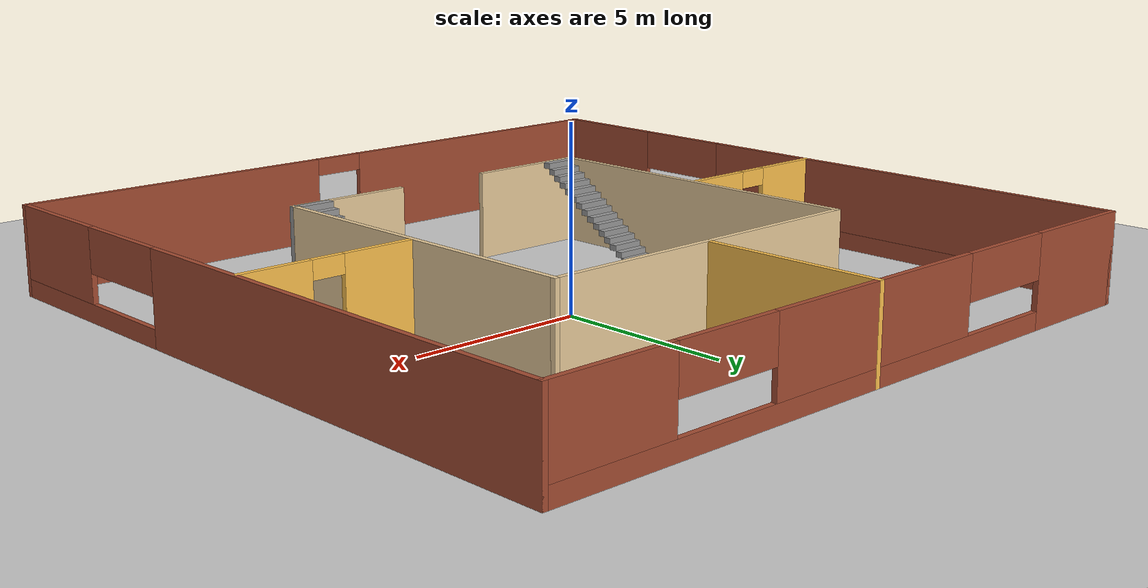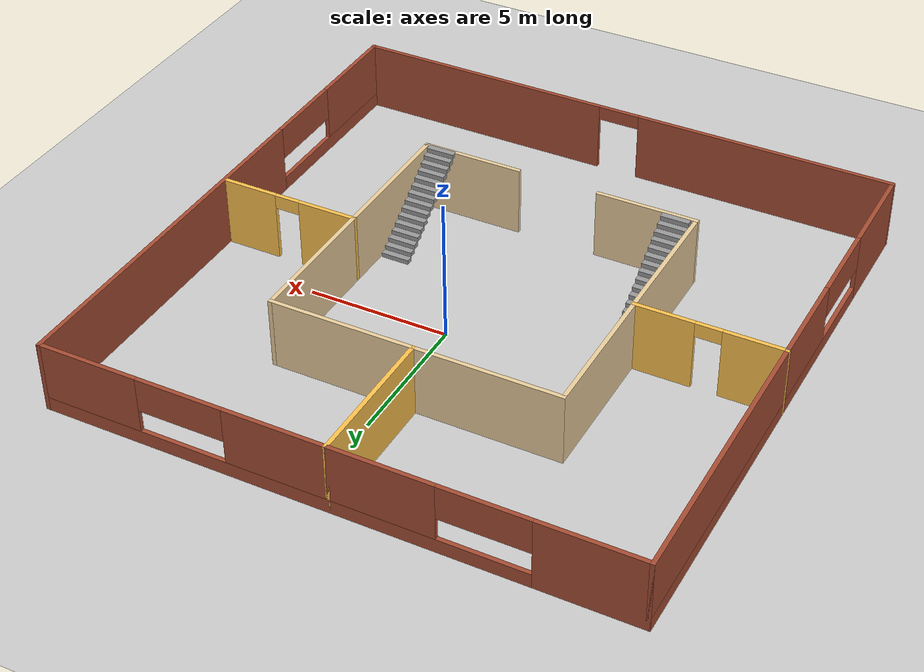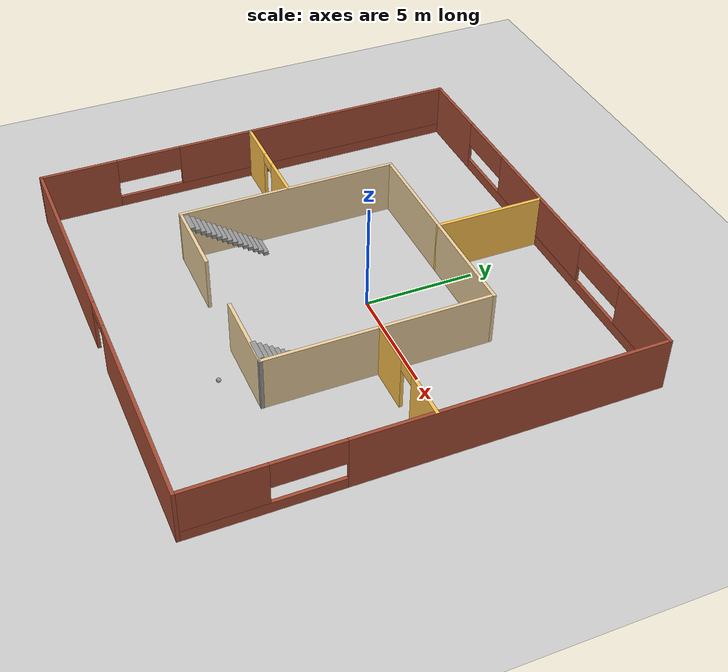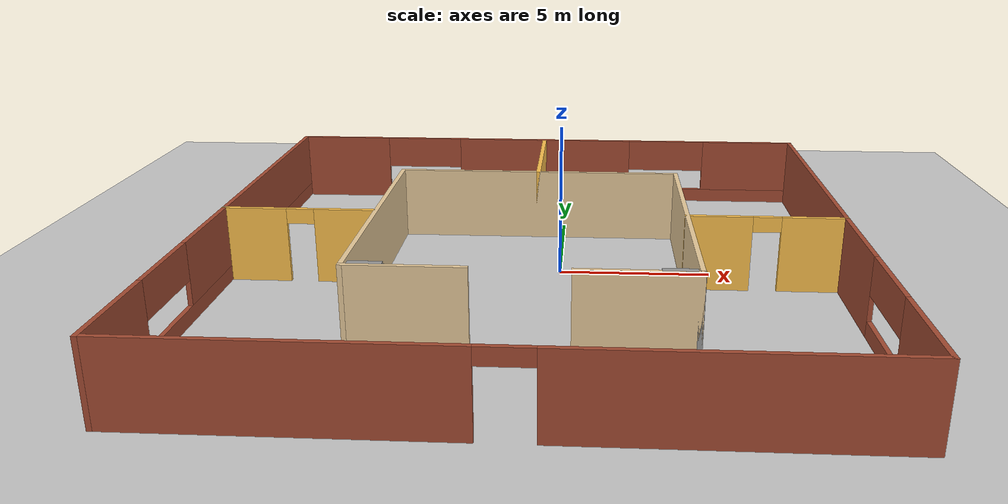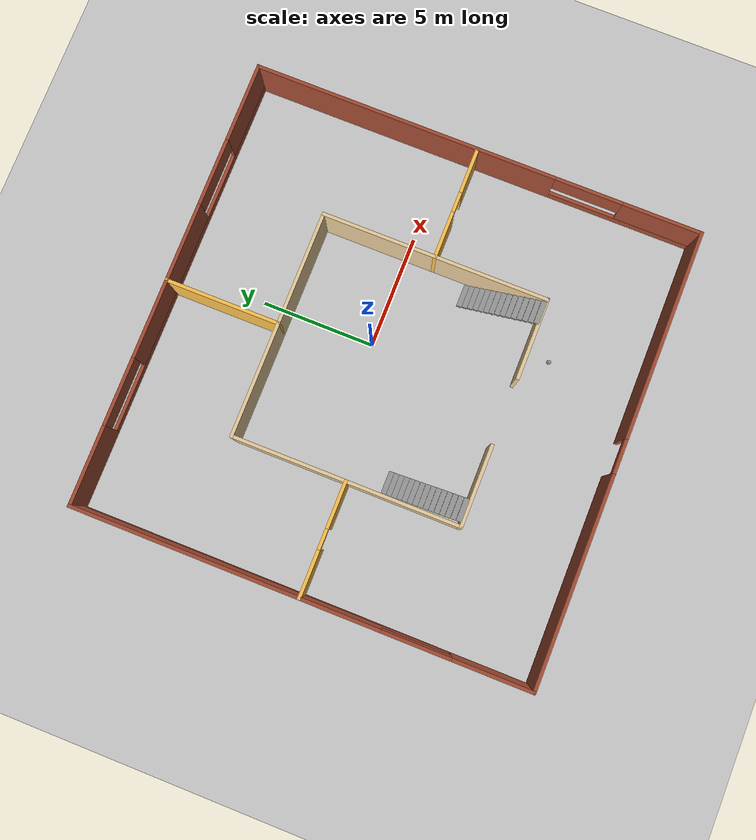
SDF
<sdf version="1.6">
 <world name="default">
  <model name="ground_plane">
   <static>1</static>
   <link name="link">
    <collision name="collision">
     <geometry><plane><normal>0 0 1</normal><size>100 100</size></plane></geometry>
     <surface>
      <contact><collide_bitmask>65535</collide_bitmask></contact>
      <friction><ode><mu>100</mu><mu2>50</mu2></ode></friction>
     </surface>
    </collision>
    <visual name="visual">
     <cast_shadows>0</cast_shadows>
     <geometry><plane><normal>0 0 1</normal><size>100 100</size></plane></geometry>
     <material>
      <script><uri>file://media/materials/scripts/gazebo.material</uri><name>Gazebo/Grey</name></script>
     </material>
    </visual>
   </link>
  </model>
  <model name="mybuilding">
   <pose>-0.940541 -1.25683 0 0 -0 0</pose>
   <link name="Stairs_1">
    <visual name="Stairs_1_Visual_0">
     <pose>4.38312 -1.63404 0.083333 0 -0 0</pose>
     <geometry><box><size>1 0.233333 0.166667</size></box></geometry>
     <material>
      <script><uri>file://media/materials/scripts/gazebo.material</uri><name>Gazebo/Grey</name></script>
      <ambient>1 1 1 1</ambient>
     </material>
     <meta><layer>0</layer></meta>
    </visual>
    <collision name="Stairs_1_Collision_0">
     <geometry><box><size>1 0.233333 0.166667</size></box></geometry>
     <pose>4.38312 -1.63404 0.083333 0 -0 0</pose>
    </collision>
    <visual name="Stairs_1_Visual_1">
     <pose>4.38312 -1.86737 0.25 0 -0 0</pose>
     <geometry><box><size>1 0.233333 0.166667</size></box></geometry>
     <material>
      <script><uri>file://media/materials/scripts/gazebo.material</uri><name>Gazebo/Grey</name></script>
      <ambient>1 1 1 1</ambient>
     </material>
     <meta><layer>0</layer></meta>
    </visual>
    <collision name="Stairs_1_Collision_1">
     <geometry><box><size>1 0.233333 0.166667</size></box></geometry>
     <pose>4.38312 -1.86737 0.25 0 -0 0</pose>
    </collision>
    <visual name="Stairs_1_Visual_2">
     <pose>4.38312 -2.10071 0.416667 0 -0 0</pose>
     <geometry><box><size>1 0.233333 0.166667</size></box></geometry>
     <material>
      <script><uri>file://media/materials/scripts/gazebo.material</uri><name>Gazebo/Grey</name></script>
      <ambient>1 1 1 1</ambient>
     </material>
     <meta><layer>0</layer></meta>
    </visual>
    <collision name="Stairs_1_Collision_2">
     <geometry><box><size>1 0.233333 0.166667</size></box></geometry>
     <pose>4.38312 -2.10071 0.416667 0 -0 0</pose>
    </collision>
    <visual name="Stairs_1_Visual_3">
     <pose>4.38312 -2.33404 0.583333 0 -0 0</pose>
     <geometry><box><size>1 0.233333 0.166667</size></box></geometry>
     <material>
      <script><uri>file://media/materials/scripts/gazebo.material</uri><name>Gazebo/Grey</name></script>
      <ambient>1 1 1 1</ambient>
     </material>
     <meta><layer>0</layer></meta>
    </visual>
    <collision name="Stairs_1_Collision_3">
     <geometry><box><size>1 0.233333 0.166667</size></box></geometry>
     <pose>4.38312 -2.33404 0.583333 0 -0 0</pose>
    </collision>
    <visual name="Stairs_1_Visual_4">
     <pose>4.38312 -2.56737 0.75 0 -0 0</pose>
     <geometry><box><size>1 0.233333 0.166667</size></box></geometry>
     <material>
      <script><uri>file://media/materials/scripts/gazebo.material</uri><name>Gazebo/Grey</name></script>
      <ambient>1 1 1 1</ambient>
     </material>
     <meta><layer>0</layer></meta>
    </visual>
    <collision name="Stairs_1_Collision_4">
     <geometry><box><size>1 0.233333 0.166667</size></box></geometry>
     <pose>4.38312 -2.56737 0.75 0 -0 0</pose>
    </collision>
    <visual name="Stairs_1_Visual_5">
     <pose>4.38312 -2.8007 0.916667 0 -0 0</pose>
     <geometry><box><size>1 0.233333 0.166667</size></box></geometry>
     <material>
      <script><uri>file://media/materials/scripts/gazebo.material</uri><name>Gazebo/Grey</name></script>
      <ambient>1 1 1 1</ambient>
     </material>
     <meta><layer>0</layer></meta>
    </visual>
    <collision name="Stairs_1_Collision_5">
     <geometry><box><size>1 0.233333 0.166667</size></box></geometry>
     <pose>4.38312 -2.8007 0.916667 0 -0 0</pose>
    </collision>
    <visual name="Stairs_1_Visual_6">
     <pose>4.38312 -3.03404 1.08333 0 -0 0</pose>
     <geometry><box><size>1 0.233333 0.166667</size></box></geometry>
     <material>
      <script><uri>file://media/materials/scripts/gazebo.material</uri><name>Gazebo/Grey</name></script>
      <ambient>1 1 1 1</ambient>
     </material>
     <meta><layer>0</layer></meta>
    </visual>
    <collision name="Stairs_1_Collision_6">
     <geometry><box><size>1 0.233333 0.166667</size></box></geometry>
     <pose>4.38312 -3.03404 1.08333 0 -0 0</pose>
    </collision>
    <visual name="Stairs_1_Visual_7">
     <pose>4.38312 -3.26737 1.25 0 -0 0</pose>
     <geometry><box><size>1 0.233333 0.166667</size></box></geometry>
     <material>
      <script><uri>file://media/materials/scripts/gazebo.material</uri><name>Gazebo/Grey</name></script>
      <ambient>1 1 1 1</ambient>
     </material>
     <meta><layer>0</layer></meta>
    </visual>
    <collision name="Stairs_1_Collision_7">
     <geometry><box><size>1 0.233333 0.166667</size></box></geometry>
     <pose>4.38312 -3.26737 1.25 0 -0 0</pose>
    </collision>
    <visual name="Stairs_1_Visual_8">
     <pose>4.38312 -3.5007 1.41667 0 -0 0</pose>
     <geometry><box><size>1 0.233333 0.166667</size></box></geometry>
     <material>
      <script><uri>file://media/materials/scripts/gazebo.material</uri><name>Gazebo/Grey</name></script>
      <ambient>1 1 1 1</ambient>
     </material>
     <meta><layer>0</layer></meta>
    </visual>
    <collision name="Stairs_1_Collision_8">
     <geometry><box><size>1 0.233333 0.166667</size></box></geometry>
     <pose>4.38312 -3.5007 1.41667 0 -0 0</pose>
    </collision>
    <visual name="Stairs_1_Visual_9">
     <pose>4.38312 -3.73404 1.58333 0 -0 0</pose>
     <geometry><box><size>1 0.233333 0.166667</size></box></geometry>
     <material>
      <script><uri>file://media/materials/scripts/gazebo.material</uri><name>Gazebo/Grey</name></script>
      <ambient>1 1 1 1</ambient>
     </material>
     <meta><layer>0</layer></meta>
    </visual>
    <collision name="Stairs_1_Collision_9">
     <geometry><box><size>1 0.233333 0.166667</size></box></geometry>
     <pose>4.38312 -3.73404 1.58333 0 -0 0</pose>
    </collision>
    <visual name="Stairs_1_Visual_10">
     <pose>4.38312 -3.96737 1.75 0 -0 0</pose>
     <geometry><box><size>1 0.233333 0.166667</size></box></geometry>
     <material>
      <script><uri>file://media/materials/scripts/gazebo.material</uri><name>Gazebo/Grey</name></script>
      <ambient>1 1 1 1</ambient>
     </material>
     <meta><layer>0</layer></meta>
    </visual>
    <collision name="Stairs_1_Collision_10">
     <geometry><box><size>1 0.233333 0.166667</size></box></geometry>
     <pose>4.38312 -3.96737 1.75 0 -0 0</pose>
    </collision>
    <visual name="Stairs_1_Visual_11">
     <pose>4.38312 -4.20071 1.91667 0 -0 0</pose>
     <geometry><box><size>1 0.233333 0.166667</size></box></geometry>
     <material>
      <script><uri>file://media/materials/scripts/gazebo.material</uri><name>Gazebo/Grey</name></script>
      <ambient>1 1 1 1</ambient>
     </material>
     <meta><layer>0</layer></meta>
    </visual>
    <collision name="Stairs_1_Collision_11">
     <geometry><box><size>1 0.233333 0.166667</size></box></geometry>
     <pose>4.38312 -4.20071 1.91667 0 -0 0</pose>
    </collision>
    <visual name="Stairs_1_Visual_12">
     <pose>4.38312 -4.43404 2.08333 0 -0 0</pose>
     <geometry><box><size>1 0.233333 0.166667</size></box></geometry>
     <material>
      <script><uri>file://media/materials/scripts/gazebo.material</uri><name>Gazebo/Grey</name></script>
      <ambient>1 1 1 1</ambient>
     </material>
     <meta><layer>0</layer></meta>
    </visual>
    <collision name="Stairs_1_Collision_12">
     <geometry><box><size>1 0.233333 0.166667</size></box></geometry>
     <pose>4.38312 -4.43404 2.08333 0 -0 0</pose>
    </collision>
    <visual name="Stairs_1_Visual_13">
     <pose>4.38312 -4.66737 2.25 0 -0 0</pose>
     <geometry><box><size>1 0.233333 0.166667</size></box></geometry>
     <material>
      <script><uri>file://media/materials/scripts/gazebo.material</uri><name>Gazebo/Grey</name></script>
      <ambient>1 1 1 1</ambient>
     </material>
     <meta><layer>0</layer></meta>
    </visual>
    <collision name="Stairs_1_Collision_13">
     <geometry><box><size>1 0.233333 0.166667</size></box></geometry>
     <pose>4.38312 -4.66737 2.25 0 -0 0</pose>
    </collision>
    <visual name="Stairs_1_Visual_14">
     <pose>4.38312 -4.90071 2.41667 0 -0 0</pose>
     <geometry><box><size>1 0.233333 0.166667</size></box></geometry>
     <material>
      <script><uri>file://media/materials/scripts/gazebo.material</uri><name>Gazebo/Grey</name></script>
      <ambient>1 1 1 1</ambient>
     </material>
     <meta><layer>0</layer></meta>
    </visual>
    <collision name="Stairs_1_Collision_14">
     <geometry><box><size>1 0.233333 0.166667</size></box></geometry>
     <pose>4.38312 -4.90071 2.41667 0 -0 0</pose>
    </collision>
   </link>
   <link name="Stairs_2">
    <visual name="Stairs_2_Visual_0">
     <pose>-4.34113 -1.55277 0.083333 0 -0 0</pose>
     <geometry><box><size>1 0.233333 0.166667</size></box></geometry>
     <material>
      <script><uri>file://media/materials/scripts/gazebo.material</uri><name>Gazebo/Grey</name></script>
      <ambient>1 1 1 1</ambient>
     </material>
     <meta><layer>0</layer></meta>
    </visual>
    <collision name="Stairs_2_Collision_0">
     <geometry><box><size>1 0.233333 0.166667</size></box></geometry>
     <pose>-4.34113 -1.55277 0.083333 0 -0 0</pose>
    </collision>
    <visual name="Stairs_2_Visual_1">
     <pose>-4.34113 -1.7861 0.25 0 -0 0</pose>
     <geometry><box><size>1 0.233333 0.166667</size></box></geometry>
     <material>
      <script><uri>file://media/materials/scripts/gazebo.material</uri><name>Gazebo/Grey</name></script>
      <ambient>1 1 1 1</ambient>
     </material>
     <meta><layer>0</layer></meta>
    </visual>
    <collision name="Stairs_2_Collision_1">
     <geometry><box><size>1 0.233333 0.166667</size></box></geometry>
     <pose>-4.34113 -1.7861 0.25 0 -0 0</pose>
    </collision>
    <visual name="Stairs_2_Visual_2">
     <pose>-4.34113 -2.01944 0.416667 0 -0 0</pose>
     <geometry><box><size>1 0.233333 0.166667</size></box></geometry>
     <material>
      <script><uri>file://media/materials/scripts/gazebo.material</uri><name>Gazebo/Grey</name></script>
      <ambient>1 1 1 1</ambient>
     </material>
     <meta><layer>0</layer></meta>
    </visual>
    <collision name="Stairs_2_Collision_2">
     <geometry><box><size>1 0.233333 0.166667</size></box></geometry>
     <pose>-4.34113 -2.01944 0.416667 0 -0 0</pose>
    </collision>
    <visual name="Stairs_2_Visual_3">
     <pose>-4.34113 -2.25277 0.583333 0 -0 0</pose>
     <geometry><box><size>1 0.233333 0.166667</size></box></geometry>
     <material>
      <script><uri>file://media/materials/scripts/gazebo.material</uri><name>Gazebo/Grey</name></script>
      <ambient>1 1 1 1</ambient>
     </material>
     <meta><layer>0</layer></meta>
    </visual>
    <collision name="Stairs_2_Collision_3">
     <geometry><box><size>1 0.233333 0.166667</size></box></geometry>
     <pose>-4.34113 -2.25277 0.583333 0 -0 0</pose>
    </collision>
    <visual name="Stairs_2_Visual_4">
     <pose>-4.34113 -2.4861 0.75 0 -0 0</pose>
     <geometry><box><size>1 0.233333 0.166667</size></box></geometry>
     <material>
      <script><uri>file://media/materials/scripts/gazebo.material</uri><name>Gazebo/Grey</name></script>
      <ambient>1 1 1 1</ambient>
     </material>
     <meta><layer>0</layer></meta>
    </visual>
    <collision name="Stairs_2_Collision_4">
     <geometry><box><size>1 0.233333 0.166667</size></box></geometry>
     <pose>-4.34113 -2.4861 0.75 0 -0 0</pose>
    </collision>
    <visual name="Stairs_2_Visual_5">
     <pose>-4.34113 -2.71944 0.916667 0 -0 0</pose>
     <geometry><box><size>1 0.233333 0.166667</size></box></geometry>
     <material>
      <script><uri>file://media/materials/scripts/gazebo.material</uri><name>Gazebo/Grey</name></script>
      <ambient>1 1 1 1</ambient>
     </material>
     <meta><layer>0</layer></meta>
    </visual>
    <collision name="Stairs_2_Collision_5">
     <geometry><box><size>1 0.233333 0.166667</size></box></geometry>
     <pose>-4.34113 -2.71944 0.916667 0 -0 0</pose>
    </collision>
    <visual name="Stairs_2_Visual_6">
     <pose>-4.34113 -2.95277 1.08333 0 -0 0</pose>
     <geometry><box><size>1 0.233333 0.166667</size></box></geometry>
     <material>
      <script><uri>file://media/materials/scripts/gazebo.material</uri><name>Gazebo/Grey</name></script>
      <ambient>1 1 1 1</ambient>
     </material>
     <meta><layer>0</layer></meta>
    </visual>
    <collision name="Stairs_2_Collision_6">
     <geometry><box><size>1 0.233333 0.166667</size></box></geometry>
     <pose>-4.34113 -2.95277 1.08333 0 -0 0</pose>
    </collision>
    <visual name="Stairs_2_Visual_7">
     <pose>-4.34113 -3.1861 1.25 0 -0 0</pose>
     <geometry><box><size>1 0.233333 0.166667</size></box></geometry>
     <material>
      <script><uri>file://media/materials/scripts/gazebo.material</uri><name>Gazebo/Grey</name></script>
      <ambient>1 1 1 1</ambient>
     </material>
     <meta><layer>0</layer></meta>
    </visual>
    <collision name="Stairs_2_Collision_7">
     <geometry><box><size>1 0.233333 0.166667</size></box></geometry>
     <pose>-4.34113 -3.1861 1.25 0 -0 0</pose>
    </collision>
    <visual name="Stairs_2_Visual_8">
     <pose>-4.34113 -3.41944 1.41667 0 -0 0</pose>
     <geometry><box><size>1 0.233333 0.166667</size></box></geometry>
     <material>
      <script><uri>file://media/materials/scripts/gazebo.material</uri><name>Gazebo/Grey</name></script>
      <ambient>1 1 1 1</ambient>
     </material>
     <meta><layer>0</layer></meta>
    </visual>
    <collision name="Stairs_2_Collision_8">
     <geometry><box><size>1 0.233333 0.166667</size></box></geometry>
     <pose>-4.34113 -3.41944 1.41667 0 -0 0</pose>
    </collision>
    <visual name="Stairs_2_Visual_9">
     <pose>-4.34113 -3.65277 1.58333 0 -0 0</pose>
     <geometry><box><size>1 0.233333 0.166667</size></box></geometry>
     <material>
      <script><uri>file://media/materials/scripts/gazebo.material</uri><name>Gazebo/Grey</name></script>
      <ambient>1 1 1 1</ambient>
     </material>
     <meta><layer>0</layer></meta>
    </visual>
    <collision name="Stairs_2_Collision_9">
     <geometry><box><size>1 0.233333 0.166667</size></box></geometry>
     <pose>-4.34113 -3.65277 1.58333 0 -0 0</pose>
    </collision>
    <visual name="Stairs_2_Visual_10">
     <pose>-4.34113 -3.8861 1.75 0 -0 0</pose>
     <geometry><box><size>1 0.233333 0.166667</size></box></geometry>
     <material>
      <script><uri>file://media/materials/scripts/gazebo.material</uri><name>Gazebo/Grey</name></script>
      <ambient>1 1 1 1</ambient>
     </material>
     <meta><layer>0</layer></meta>
    </visual>
    <collision name="Stairs_2_Collision_10">
     <geometry><box><size>1 0.233333 0.166667</size></box></geometry>
     <pose>-4.34113 -3.8861 1.75 0 -0 0</pose>
    </collision>
    <visual name="Stairs_2_Visual_11">
     <pose>-4.34113 -4.11944 1.91667 0 -0 0</pose>
     <geometry><box><size>1 0.233333 0.166667</size></box></geometry>
     <material>
      <script><uri>file://media/materials/scripts/gazebo.material</uri><name>Gazebo/Grey</name></script>
      <ambient>1 1 1 1</ambient>
     </material>
     <meta><layer>0</layer></meta>
    </visual>
    <collision name="Stairs_2_Collision_11">
     <geometry><box><size>1 0.233333 0.166667</size></box></geometry>
     <pose>-4.34113 -4.11944 1.91667 0 -0 0</pose>
    </collision>
    <visual name="Stairs_2_Visual_12">
     <pose>-4.34113 -4.35277 2.08333 0 -0 0</pose>
     <geometry><box><size>1 0.233333 0.166667</size></box></geometry>
     <material>
      <script><uri>file://media/materials/scripts/gazebo.material</uri><name>Gazebo/Grey</name></script>
      <ambient>1 1 1 1</ambient>
     </material>
     <meta><layer>0</layer></meta>
    </visual>
    <collision name="Stairs_2_Collision_12">
     <geometry><box><size>1 0.233333 0.166667</size></box></geometry>
     <pose>-4.34113 -4.35277 2.08333 0 -0 0</pose>
    </collision>
    <visual name="Stairs_2_Visual_13">
     <pose>-4.34113 -4.5861 2.25 0 -0 0</pose>
     <geometry><box><size>1 0.233333 0.166667</size></box></geometry>
     <material>
      <script><uri>file://media/materials/scripts/gazebo.material</uri><name>Gazebo/Grey</name></script>
      <ambient>1 1 1 1</ambient>
     </material>
     <meta><layer>0</layer></meta>
    </visual>
    <collision name="Stairs_2_Collision_13">
     <geometry><box><size>1 0.233333 0.166667</size></box></geometry>
     <pose>-4.34113 -4.5861 2.25 0 -0 0</pose>
    </collision>
    <visual name="Stairs_2_Visual_14">
     <pose>-4.34113 -4.81944 2.41667 0 -0 0</pose>
     <geometry><box><size>1 0.233333 0.166667</size></box></geometry>
     <material>
      <script><uri>file://media/materials/scripts/gazebo.material</uri><name>Gazebo/Grey</name></script>
      <ambient>1 1 1 1</ambient>
     </material>
     <meta><layer>0</layer></meta>
    </visual>
    <collision name="Stairs_2_Collision_14">
     <geometry><box><size>1 0.233333 0.166667</size></box></geometry>
     <pose>-4.34113 -4.81944 2.41667 0 -0 0</pose>
    </collision>
   </link>
   <link name="Wall_0">
    <collision name="Wall_0_Collision">
     <geometry><box><size>10.15 0.15 2.5</size></box></geometry>
     <pose>0 0 1.25 0 -0 0</pose>
    </collision>
    <visual name="Wall_0_Visual">
     <pose>0 0 1.25 0 -0 0</pose>
     <geometry><box><size>10.15 0.15 2.5</size></box></geometry>
     <material>
      <script><uri>file://media/materials/scripts/gazebo.material</uri><name>Gazebo/Grey</name></script>
      <ambient>0.921569 0.807843 0.615686 1</ambient>
     </material>
     <meta><layer>0</layer></meta>
    </visual>
    <pose>-5 0 0 0 -0 1.5708</pose>
   </link>
   <link name="Wall_10">
    <collision name="Wall_10_Collision">
     <geometry><box><size>10.15 0.15 2.5</size></box></geometry>
     <pose>0 0 1.25 0 -0 0</pose>
    </collision>
    <visual name="Wall_10_Visual">
     <pose>0 0 1.25 0 -0 0</pose>
     <geometry><box><size>10.15 0.15 2.5</size></box></geometry>
     <material>
      <script><uri>file://media/materials/scripts/gazebo.material</uri><name>Gazebo/Grey</name></script>
      <ambient>0.921569 0.807843 0.615686 1</ambient>
     </material>
     <meta><layer>0</layer></meta>
    </visual>
    <pose>0 5 0 0 -0 3.14159</pose>
   </link>
   <link name="Wall_12">
    <pose>0 -10 0 0 -0 3.14159</pose>
    <visual name="Wall_12_Visual_0">
     <pose>-5.4125 0 1.25 0 -0 0</pose>
     <geometry><box><size>9.325 0.15 2.5</size></box></geometry>
     <material>
      <script><uri>file://media/materials/scripts/gazebo.material</uri><name>Gazebo/Bricks</name></script>
      <ambient>1 1 1 1</ambient>
     </material>
     <meta><layer>0</layer></meta>
    </visual>
    <collision name="Wall_12_Collision_0">
     <geometry><box><size>9.325 0.15 2.5</size></box></geometry>
     <pose>-5.4125 0 1.25 0 -0 0</pose>
    </collision>
    <visual name="Wall_12_Visual_1">
     <pose>5.4125 0 1.25 0 -0 0</pose>
     <geometry><box><size>9.325 0.15 2.5</size></box></geometry>
     <material>
      <script><uri>file://media/materials/scripts/gazebo.material</uri><name>Gazebo/Bricks</name></script>
      <ambient>1 1 1 1</ambient>
     </material>
     <meta><layer>0</layer></meta>
    </visual>
    <collision name="Wall_12_Collision_1">
     <geometry><box><size>9.325 0.15 2.5</size></box></geometry>
     <pose>5.4125 0 1.25 0 -0 0</pose>
    </collision>
    <visual name="Wall_12_Visual_2">
     <pose>0 0 2.25 0 -0 0</pose>
     <geometry><box><size>1.5 0.15 0.5</size></box></geometry>
     <material>
      <script><uri>file://media/materials/scripts/gazebo.material</uri><name>Gazebo/Bricks</name></script>
      <ambient>1 1 1 1</ambient>
     </material>
     <meta><layer>0</layer></meta>
    </visual>
    <collision name="Wall_12_Collision_2">
     <geometry><box><size>1.5 0.15 0.5</size></box></geometry>
     <pose>0 0 2.25 0 -0 0</pose>
    </collision>
   </link>
   <link name="Wall_13">
    <pose>-10 0 0 0 -0 1.5708</pose>
    <visual name="Wall_13_Visual_0">
     <pose>-8.2875 0 1.25 0 -0 0</pose>
     <geometry><box><size>3.575 0.15 2.5</size></box></geometry>
     <material>
      <script><uri>file://media/materials/scripts/gazebo.material</uri><name>Gazebo/Bricks</name></script>
      <ambient>1 1 1 1</ambient>
     </material>
     <meta><layer>0</layer></meta>
    </visual>
    <collision name="Wall_13_Collision_0">
     <geometry><box><size>3.575 0.15 2.5</size></box></geometry>
     <pose>-8.2875 0 1.25 0 -0 0</pose>
    </collision>
    <visual name="Wall_13_Visual_1">
     <pose>1.7875 0 0.25 0 -0 0</pose>
     <geometry><box><size>16.575 0.15 0.5</size></box></geometry>
     <material>
      <script><uri>file://media/materials/scripts/gazebo.material</uri><name>Gazebo/Bricks</name></script>
      <ambient>1 1 1 1</ambient>
     </material>
     <meta><layer>0</layer></meta>
    </visual>
    <collision name="Wall_13_Collision_1">
     <geometry><box><size>16.575 0.15 0.5</size></box></geometry>
     <pose>1.7875 0 0.25 0 -0 0</pose>
    </collision>
    <visual name="Wall_13_Visual_2">
     <pose>3.2875 0 1.5 0 -0 0</pose>
     <geometry><box><size>13.575 0.15 2</size></box></geometry>
     <material>
      <script><uri>file://media/materials/scripts/gazebo.material</uri><name>Gazebo/Bricks</name></script>
      <ambient>1 1 1 1</ambient>
     </material>
     <meta><layer>0</layer></meta>
    </visual>
    <collision name="Wall_13_Collision_2">
     <geometry><box><size>13.575 0.15 2</size></box></geometry>
     <pose>3.2875 0 1.5 0 -0 0</pose>
    </collision>
    <visual name="Wall_13_Visual_3">
     <pose>-5 0 1.9 0 -0 0</pose>
     <geometry><box><size>3 0.15 1.2</size></box></geometry>
     <material>
      <script><uri>file://media/materials/scripts/gazebo.material</uri><name>Gazebo/Bricks</name></script>
      <ambient>1 1 1 1</ambient>
     </material>
     <meta><layer>0</layer></meta>
    </visual>
    <collision name="Wall_13_Collision_3">
     <geometry><box><size>3 0.15 1.2</size></box></geometry>
     <pose>-5 0 1.9 0 -0 0</pose>
    </collision>
   </link>
   <link name="Wall_14">
    <pose>0 10 0 0 -0 0</pose>
    <visual name="Wall_14_Visual_0">
     <pose>-8.2875 0 1.25 0 -0 0</pose>
     <geometry><box><size>3.575 0.15 2.5</size></box></geometry>
     <material>
      <script><uri>file://media/materials/scripts/gazebo.material</uri><name>Gazebo/Bricks</name></script>
      <ambient>1 1 1 1</ambient>
     </material>
     <meta><layer>0</layer></meta>
    </visual>
    <collision name="Wall_14_Collision_0">
     <geometry><box><size>3.575 0.15 2.5</size></box></geometry>
     <pose>-8.2875 0 1.25 0 -0 0</pose>
    </collision>
    <visual name="Wall_14_Visual_1">
     <pose>1.7875 0 0.25 0 -0 0</pose>
     <geometry><box><size>16.575 0.15 0.5</size></box></geometry>
     <material>
      <script><uri>file://media/materials/scripts/gazebo.material</uri><name>Gazebo/Bricks</name></script>
      <ambient>1 1 1 1</ambient>
     </material>
     <meta><layer>0</layer></meta>
    </visual>
    <collision name="Wall_14_Collision_1">
     <geometry><box><size>16.575 0.15 0.5</size></box></geometry>
     <pose>1.7875 0 0.25 0 -0 0</pose>
    </collision>
    <visual name="Wall_14_Visual_2">
     <pose>0 0 1.5 0 -0 0</pose>
     <geometry><box><size>7 0.15 2</size></box></geometry>
     <material>
      <script><uri>file://media/materials/scripts/gazebo.material</uri><name>Gazebo/Bricks</name></script>
      <ambient>1 1 1 1</ambient>
     </material>
     <meta><layer>0</layer></meta>
    </visual>
    <collision name="Wall_14_Collision_2">
     <geometry><box><size>7 0.15 2</size></box></geometry>
     <pose>0 0 1.5 0 -0 0</pose>
    </collision>
    <visual name="Wall_14_Visual_3">
     <pose>8.2875 0 1.5 0 -0 0</pose>
     <geometry><box><size>3.575 0.15 2</size></box></geometry>
     <material>
      <script><uri>file://media/materials/scripts/gazebo.material</uri><name>Gazebo/Bricks</name></script>
      <ambient>1 1 1 1</ambient>
     </material>
     <meta><layer>0</layer></meta>
    </visual>
    <collision name="Wall_14_Collision_3">
     <geometry><box><size>3.575 0.15 2</size></box></geometry>
     <pose>8.2875 0 1.5 0 -0 0</pose>
    </collision>
    <visual name="Wall_14_Visual_4">
     <pose>-5 0 1.9 0 -0 0</pose>
     <geometry><box><size>3 0.15 1.2</size></box></geometry>
     <material>
      <script><uri>file://media/materials/scripts/gazebo.material</uri><name>Gazebo/Bricks</name></script>
      <ambient>1 1 1 1</ambient>
     </material>
     <meta><layer>0</layer></meta>
    </visual>
    <collision name="Wall_14_Collision_4">
     <geometry><box><size>3 0.15 1.2</size></box></geometry>
     <pose>-5 0 1.9 0 -0 0</pose>
    </collision>
    <visual name="Wall_14_Visual_5">
     <pose>5 0 1.9 0 -0 0</pose>
     <geometry><box><size>3 0.15 1.2</size></box></geometry>
     <material>
      <script><uri>file://media/materials/scripts/gazebo.material</uri><name>Gazebo/Bricks</name></script>
      <ambient>1 1 1 1</ambient>
     </material>
     <meta><layer>0</layer></meta>
    </visual>
    <collision name="Wall_14_Collision_5">
     <geometry><box><size>3 0.15 1.2</size></box></geometry>
     <pose>5 0 1.9 0 -0 0</pose>
    </collision>
   </link>
   <link name="Wall_15">
    <pose>10 0 0 0 0 -1.5708</pose>
    <visual name="Wall_15_Visual_0">
     <pose>-3.2875 0 1.25 0 -0 0</pose>
     <geometry><box><size>13.575 0.15 2.5</size></box></geometry>
     <material>
      <script><uri>file://media/materials/scripts/gazebo.material</uri><name>Gazebo/Bricks</name></script>
      <ambient>1 1 1 1</ambient>
     </material>
     <meta><layer>0</layer></meta>
    </visual>
    <collision name="Wall_15_Collision_0">
     <geometry><box><size>13.575 0.15 2.5</size></box></geometry>
     <pose>-3.2875 0 1.25 0 -0 0</pose>
    </collision>
    <visual name="Wall_15_Visual_1">
     <pose>6.7875 0 0.25 0 -0 0</pose>
     <geometry><box><size>6.575 0.15 0.5</size></box></geometry>
     <material>
      <script><uri>file://media/materials/scripts/gazebo.material</uri><name>Gazebo/Bricks</name></script>
      <ambient>1 1 1 1</ambient>
     </material>
     <meta><layer>0</layer></meta>
    </visual>
    <collision name="Wall_15_Collision_1">
     <geometry><box><size>6.575 0.15 0.5</size></box></geometry>
     <pose>6.7875 0 0.25 0 -0 0</pose>
    </collision>
    <visual name="Wall_15_Visual_2">
     <pose>8.2875 0 1.5 0 -0 0</pose>
     <geometry><box><size>3.575 0.15 2</size></box></geometry>
     <material>
      <script><uri>file://media/materials/scripts/gazebo.material</uri><name>Gazebo/Bricks</name></script>
      <ambient>1 1 1 1</ambient>
     </material>
     <meta><layer>0</layer></meta>
    </visual>
    <collision name="Wall_15_Collision_2">
     <geometry><box><size>3.575 0.15 2</size></box></geometry>
     <pose>8.2875 0 1.5 0 -0 0</pose>
    </collision>
    <visual name="Wall_15_Visual_3">
     <pose>5 0 1.9 0 -0 0</pose>
     <geometry><box><size>3 0.15 1.2</size></box></geometry>
     <material>
      <script><uri>file://media/materials/scripts/gazebo.material</uri><name>Gazebo/Bricks</name></script>
      <ambient>1 1 1 1</ambient>
     </material>
     <meta><layer>0</layer></meta>
    </visual>
    <collision name="Wall_15_Collision_3">
     <geometry><box><size>3 0.15 1.2</size></box></geometry>
     <pose>5 0 1.9 0 -0 0</pose>
    </collision>
   </link>
   <link name="Wall_17">
    <collision name="Wall_17_Collision">
     <geometry><box><size>5.15 0.15 2.5</size></box></geometry>
     <pose>0 0 1.25 0 -0 0</pose>
    </collision>
    <visual name="Wall_17_Visual">
     <pose>0 0 1.25 0 -0 0</pose>
     <geometry><box><size>5.15 0.15 2.5</size></box></geometry>
     <material>
      <script><uri>file://media/materials/scripts/gazebo.material</uri><name>Gazebo/Grey</name></script>
      <ambient>1 0.764706 0.305882 1</ambient>
     </material>
     <meta><layer>0</layer></meta>
    </visual>
    <pose>0 7.5 0 0 -0 1.5708</pose>
   </link>
   <link name="Wall_19">
    <pose>7.5 0 0 0 -0 3.14159</pose>
    <visual name="Wall_19_Visual_0">
     <pose>-1.52185 0 1.25 0 -0 0</pose>
     <geometry><box><size>2.10629 0.15 2.5</size></box></geometry>
     <material>
      <script><uri>file://media/materials/scripts/gazebo.material</uri><name>Gazebo/Grey</name></script>
      <ambient>1 0.764706 0.305882 1</ambient>
     </material>
     <meta><layer>0</layer></meta>
    </visual>
    <collision name="Wall_19_Collision_0">
     <geometry><box><size>2.10629 0.15 2.5</size></box></geometry>
     <pose>-1.52185 0 1.25 0 -0 0</pose>
    </collision>
    <visual name="Wall_19_Visual_1">
     <pose>1.50315 0 1.25 0 -0 0</pose>
     <geometry><box><size>2.14371 0.15 2.5</size></box></geometry>
     <material>
      <script><uri>file://media/materials/scripts/gazebo.material</uri><name>Gazebo/Grey</name></script>
      <ambient>1 0.764706 0.305882 1</ambient>
     </material>
     <meta><layer>0</layer></meta>
    </visual>
    <collision name="Wall_19_Collision_1">
     <geometry><box><size>2.14371 0.15 2.5</size></box></geometry>
     <pose>1.50315 0 1.25 0 -0 0</pose>
    </collision>
    <visual name="Wall_19_Visual_2">
     <pose>-0.018708 0 2.25 0 -0 0</pose>
     <geometry><box><size>0.9 0.15 0.5</size></box></geometry>
     <material>
      <script><uri>file://media/materials/scripts/gazebo.material</uri><name>Gazebo/Grey</name></script>
      <ambient>1 0.764706 0.305882 1</ambient>
     </material>
     <meta><layer>0</layer></meta>
    </visual>
    <collision name="Wall_19_Collision_2">
     <geometry><box><size>0.9 0.15 0.5</size></box></geometry>
     <pose>-0.018708 0 2.25 0 -0 0</pose>
    </collision>
   </link>
   <link name="Wall_2">
    <collision name="Wall_2_Collision">
     <geometry><box><size>10.15 0.15 2.5</size></box></geometry>
     <pose>0 0 1.25 0 -0 0</pose>
    </collision>
    <visual name="Wall_2_Visual">
     <pose>0 0 1.25 0 -0 0</pose>
     <geometry><box><size>10.15 0.15 2.5</size></box></geometry>
     <material>
      <script><uri>file://media/materials/scripts/gazebo.material</uri><name>Gazebo/Grey</name></script>
      <ambient>0.921569 0.807843 0.615686 1</ambient>
     </material>
     <meta><layer>0</layer></meta>
    </visual>
    <pose>5 0 0 0 -0 1.5708</pose>
   </link>
   <link name="Wall_21">
    <collision name="Wall_21_Collision">
     <geometry><box><size>0.15 0.15 2.5</size></box></geometry>
     <pose>0 0 1.25 0 -0 0</pose>
    </collision>
    <visual name="Wall_21_Visual">
     <pose>0 0 1.25 0 -0 0</pose>
     <geometry><box><size>0.15 0.15 2.5</size></box></geometry>
     <material>
      <script><uri>file://media/materials/scripts/gazebo.material</uri><name>Gazebo/Grey</name></script>
      <ambient>1 1 1 1</ambient>
     </material>
     <meta><layer>0</layer></meta>
    </visual>
    <pose>-10 0 0 0 -0 0</pose>
   </link>
   <link name="Wall_24">
    <pose>-7.5 0 0 0 -0 3.14159</pose>
    <visual name="Wall_24_Visual_0">
     <pose>-1.51683 0 1.25 0 -0 0</pose>
     <geometry><box><size>2.11633 0.15 2.5</size></box></geometry>
     <material>
      <script><uri>file://media/materials/scripts/gazebo.material</uri><name>Gazebo/Grey</name></script>
      <ambient>1 0.764706 0.305882 1</ambient>
     </material>
     <meta><layer>0</layer></meta>
    </visual>
    <collision name="Wall_24_Collision_0">
     <geometry><box><size>2.11633 0.15 2.5</size></box></geometry>
     <pose>-1.51683 0 1.25 0 -0 0</pose>
    </collision>
    <visual name="Wall_24_Visual_1">
     <pose>1.50817 0 1.25 0 -0 0</pose>
     <geometry><box><size>2.13367 0.15 2.5</size></box></geometry>
     <material>
      <script><uri>file://media/materials/scripts/gazebo.material</uri><name>Gazebo/Grey</name></script>
      <ambient>1 0.764706 0.305882 1</ambient>
     </material>
     <meta><layer>0</layer></meta>
    </visual>
    <collision name="Wall_24_Collision_1">
     <geometry><box><size>2.13367 0.15 2.5</size></box></geometry>
     <pose>1.50817 0 1.25 0 -0 0</pose>
    </collision>
    <visual name="Wall_24_Visual_2">
     <pose>-0.008668 0 2.25 0 -0 0</pose>
     <geometry><box><size>0.9 0.15 0.5</size></box></geometry>
     <material>
      <script><uri>file://media/materials/scripts/gazebo.material</uri><name>Gazebo/Grey</name></script>
      <ambient>1 0.764706 0.305882 1</ambient>
     </material>
     <meta><layer>0</layer></meta>
    </visual>
    <collision name="Wall_24_Collision_2">
     <geometry><box><size>0.9 0.15 0.5</size></box></geometry>
     <pose>-0.008668 0 2.25 0 -0 0</pose>
    </collision>
   </link>
   <link name="Wall_5">
    <collision name="Wall_5_Collision">
     <geometry><box><size>3.65 0.15 2.5</size></box></geometry>
     <pose>0 0 1.25 0 -0 0</pose>
    </collision>
    <visual name="Wall_5_Visual">
     <pose>0 0 1.25 0 -0 0</pose>
     <geometry><box><size>3.65 0.15 2.5</size></box></geometry>
     <material>
      <script><uri>file://media/materials/scripts/gazebo.material</uri><name>Gazebo/Grey</name></script>
      <ambient>0.921569 0.807843 0.615686 1</ambient>
     </material>
     <meta><layer>0</layer></meta>
    </visual>
    <pose>-3.25 -5 0 0 -0 3.14159</pose>
   </link>
   <link name="Wall_7">
    <collision name="Wall_7_Collision">
     <geometry><box><size>3.65 0.15 2.5</size></box></geometry>
     <pose>0 0 1.25 0 -0 0</pose>
    </collision>
    <visual name="Wall_7_Visual">
     <pose>0 0 1.25 0 -0 0</pose>
     <geometry><box><size>3.65 0.15 2.5</size></box></geometry>
     <material>
      <script><uri>file://media/materials/scripts/gazebo.material</uri><name>Gazebo/Grey</name></script>
      <ambient>0.921569 0.807843 0.615686 1</ambient>
     </material>
     <meta><layer>0</layer></meta>
    </visual>
    <pose>3.25 -5 0 0 -0 0</pose>
   </link>
   <link name="Wall_8">
    <collision name="Wall_8_Collision">
     <geometry><box><size>0.16 0.15 2.5</size></box></geometry>
     <pose>0 0 1.25 0 -0 0</pose>
    </collision>
    <visual name="Wall_8_Visual">
     <pose>0 0 1.25 0 -0 0</pose>
     <geometry><box><size>0.16 0.15 2.5</size></box></geometry>
     <material>
      <script><uri>file://media/materials/scripts/gazebo.material</uri><name>Gazebo/Grey</name></script>
      <ambient>1 1 1 1</ambient>
     </material>
     <meta><layer>0</layer></meta>
    </visual>
    <pose>5.005 -5 0 0 -0 0</pose>
   </link>
   <static>1</static>
  </model>
  <model name="my_ball">
   <link name="link_0">
    <inertial>
     <mass>1</mass>
     <inertia><ixx>0.1</ixx><ixy>0</ixy><ixz>0</ixz><iyy>0.1</iyy><iyz>0</iyz><izz>0.1</izz></inertia>
    </inertial>
    <visual name="visual">
     <geometry><sphere><radius>0.1</radius></sphere></geometry>
     <material>
      <lighting>1</lighting>
      <script><uri>file://media/materials/scripts/gazebo.material</uri><name>Gazebo/Grey</name></script>
      <shader type="pixel"><normal_map>__default__</normal_map></shader>
      <ambient>1 1 1 1</ambient>
      <diffuse>1 1 1 1</diffuse>
      <specular>1 1 1 1</specular>
      <emissive>1 1 1 1</emissive>
     </material>
    </visual>
    <collision name="collision">
     <geometry><sphere><radius>0.1</radius></sphere></geometry>
     <surface>
      <friction>
       <ode><mu>1</mu><mu2>1</mu2><fdir1>0 0 0</fdir1><slip1>0</slip1><slip2>0</slip2></ode>
       <torsional>
        <coefficient>1</coefficient>
        <patch_radius>0</patch_radius>
        <surface_radius>0</surface_radius>
        <use_patch_radius>1</use_patch_radius>
        <ode><slip>0</slip></ode>
       </torsional>
      </friction>
      <bounce><restitution_coefficient>0</restitution_coefficient><threshold>1e+06</threshold></bounce>
      <contact>
       <collide_without_contact>0</collide_without_contact>
       <collide_without_contact_bitmask>1</collide_without_contact_bitmask>
       <collide_bitmask>1</collide_bitmask>
       <ode>
        <soft_cfm>0</soft_cfm>
        <soft_erp>0.2</soft_erp>
        <kp>1e+13</kp>
        <kd>1</kd>
        <max_vel>0.01</max_vel>
        <min_depth>0</min_depth>
       </ode>
       <bullet>
        <split_impulse>1</split_impulse>
        <split_impulse_penetration_threshold>-0.01</split_impulse_penetration_threshold>
        <soft_cfm>0</soft_cfm>
        <soft_erp>0.2</soft_erp>
        <kp>1e+13</kp>
        <kd>1</kd>
       </bullet>
      </contact>
     </surface>
    </collision>
   </link>
   <static>0</static>
   <pose>2.08175 -7.37705 0.1 0 -0 0</pose>
  </model>
 </world>
</sdf>
